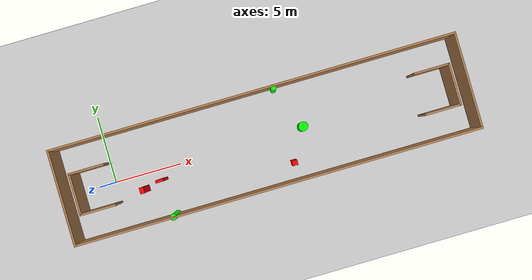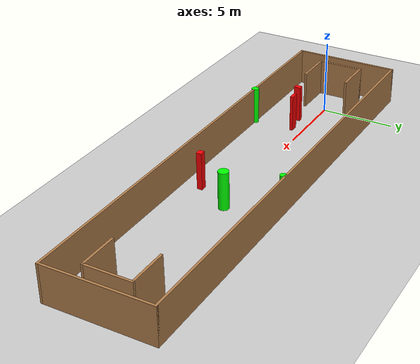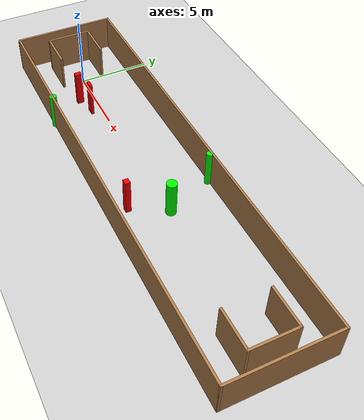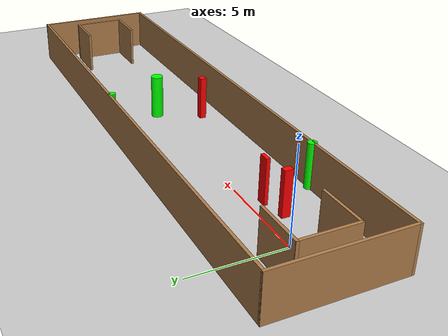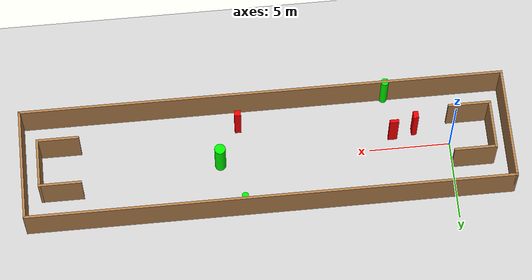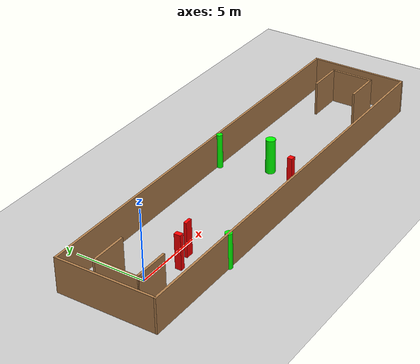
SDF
<sdf version="1.7">
 <world name="default">
  <light name="sun" type="directional">
   <pose>0 0 10 0 -0 0</pose>
   <diffuse>0.8 0.8 0.8 1</diffuse>
   <specular>0.2 0.2 0.2 1</specular>
   <attenuation>
    <range>1000</range>
    <constant>0.9</constant>
    <linear>0.01</linear>
    <quadratic>0.001</quadratic>
   </attenuation>
   <direction>-0.5 0.1 -0.9</direction>
   <spot><inner_angle>0</inner_angle><outer_angle>0</outer_angle><falloff>0</falloff></spot>
  </light>
  <model name="ground_plane">
   <static>1</static>
   <link name="link">
    <collision name="collision">
     <geometry><plane><normal>0 0 1</normal><size>100 100</size></plane></geometry>
     <surface>
      <contact><collide_bitmask>65535</collide_bitmask></contact>
      <friction><ode><mu>100</mu><mu2>50</mu2></ode></friction>
     </surface>
    </collision>
    <visual name="visual">
     <cast_shadows>0</cast_shadows>
     <geometry><plane><normal>0 0 1</normal><size>100 100</size></plane></geometry>
     <material>
      <script><uri>file://media/materials/scripts/gazebo.material</uri><name>Gazebo/Grey</name></script>
     </material>
    </visual>
   </link>
  </model>
  <gravity>0 0 -9.8</gravity>
  <magnetic_field>6e-06 2.3e-05 -4.2e-05</magnetic_field>
  <atmosphere type="adiabatic"/>
  <physics type="ode">
   <max_step_size>0.001</max_step_size>
   <real_time_factor>1</real_time_factor>
   <real_time_update_rate>1000</real_time_update_rate>
  </physics>
  <scene><ambient>0.4 0.4 0.4 1</ambient><background>0.7 0.7 0.7 1</background><shadows>1</shadows></scene>
  <spherical_coordinates>
   <surface_model>EARTH_WGS84</surface_model>
   <latitude_deg>0</latitude_deg>
   <longitude_deg>0</longitude_deg>
   <elevation>0</elevation>
   <heading_deg>0</heading_deg>
  </spherical_coordinates>
  <model name="my_base_walls">
   <link name="Wall_0">
    <collision name="Wall_0_Collision">
     <geometry><box><size>7.15 0.15 2.5</size></box></geometry>
     <pose>0 0 1.25 0 -0 0</pose>
    </collision>
    <visual name="Wall_0_Visual">
     <pose>0 0 1.25 0 -0 0</pose>
     <geometry><box><size>7.15 0.15 2.5</size></box></geometry>
     <material>
      <script><uri>file://media/materials/scripts/gazebo.material</uri><name>Gazebo/Wood</name></script>
      <ambient>1 1 1 1</ambient>
     </material>
     <meta><layer>0</layer></meta>
    </visual>
    <pose>-15 0 0 0 -0 1.5708</pose>
   </link>
   <link name="Wall_10">
    <collision name="Wall_10_Collision">
     <geometry><box><size>2.65 0.15 2.5</size></box></geometry>
     <pose>0 0 1.25 0 -0 0</pose>
    </collision>
    <visual name="Wall_10_Visual">
     <pose>0 0 1.25 0 -0 0</pose>
     <geometry><box><size>2.65 0.15 2.5</size></box></geometry>
     <material>
      <script><uri>file://media/materials/scripts/gazebo.material</uri><name>Gazebo/Wood</name></script>
      <ambient>1 1 1 1</ambient>
     </material>
     <meta><layer>0</layer></meta>
    </visual>
    <pose>-12.75 -1.5 0 0 -0 0</pose>
   </link>
   <link name="Wall_12">
    <collision name="Wall_12_Collision">
     <geometry><box><size>2.65 0.15 2.5</size></box></geometry>
     <pose>0 0 1.25 0 -0 0</pose>
    </collision>
    <visual name="Wall_12_Visual">
     <pose>0 0 1.25 0 -0 0</pose>
     <geometry><box><size>2.65 0.15 2.5</size></box></geometry>
     <material>
      <script><uri>file://media/materials/scripts/gazebo.material</uri><name>Gazebo/Wood</name></script>
      <ambient>1 1 1 1</ambient>
     </material>
     <meta><layer>0</layer></meta>
    </visual>
    <pose>-12.75 1.5 0 0 -0 0</pose>
   </link>
   <link name="Wall_14">
    <collision name="Wall_14_Collision">
     <geometry><box><size>3.15 0.15 2.5</size></box></geometry>
     <pose>0 0 1.25 0 -0 0</pose>
    </collision>
    <visual name="Wall_14_Visual">
     <pose>0 0 1.25 0 -0 0</pose>
     <geometry><box><size>3.15 0.15 2.5</size></box></geometry>
     <material>
      <script><uri>file://media/materials/scripts/gazebo.material</uri><name>Gazebo/Wood</name></script>
      <ambient>1 1 1 1</ambient>
     </material>
     <meta><layer>0</layer></meta>
    </visual>
    <pose>14 0 0 0 -0 -1.5708</pose>
   </link>
   <link name="Wall_15">
    <collision name="Wall_15_Collision">
     <geometry><box><size>2.65 0.15 2.5</size></box></geometry>
     <pose>0 0 1.25 0 -0 0</pose>
    </collision>
    <visual name="Wall_15_Visual">
     <pose>0 0 1.25 0 -0 0</pose>
     <geometry><box><size>2.65 0.15 2.5</size></box></geometry>
     <material>
      <script><uri>file://media/materials/scripts/gazebo.material</uri><name>Gazebo/Wood</name></script>
      <ambient>1 1 1 1</ambient>
     </material>
     <meta><layer>0</layer></meta>
    </visual>
    <pose>12.75 -1.5 0 0 -0 3.14159</pose>
   </link>
   <link name="Wall_17">
    <collision name="Wall_17_Collision">
     <geometry><box><size>2.65 0.15 2.5</size></box></geometry>
     <pose>0 0 1.25 0 -0 0</pose>
    </collision>
    <visual name="Wall_17_Visual">
     <pose>0 0 1.25 0 -0 0</pose>
     <geometry><box><size>2.65 0.15 2.5</size></box></geometry>
     <material>
      <script><uri>file://media/materials/scripts/gazebo.material</uri><name>Gazebo/Wood</name></script>
      <ambient>1 1 1 1</ambient>
     </material>
     <meta><layer>0</layer></meta>
    </visual>
    <pose>12.75 1.5 0 0 -0 3.14159</pose>
   </link>
   <link name="Wall_2">
    <collision name="Wall_2_Collision">
     <geometry><box><size>30.15 0.15 2.5</size></box></geometry>
     <pose>0 0 1.25 0 -0 0</pose>
    </collision>
    <visual name="Wall_2_Visual">
     <pose>0 0 1.25 0 -0 0</pose>
     <geometry><box><size>30.15 0.15 2.5</size></box></geometry>
     <material>
      <script><uri>file://media/materials/scripts/gazebo.material</uri><name>Gazebo/Wood</name></script>
      <ambient>1 1 1 1</ambient>
     </material>
     <meta><layer>0</layer></meta>
    </visual>
    <pose>-0 -3.5 0 0 -0 0</pose>
   </link>
   <link name="Wall_4">
    <collision name="Wall_4_Collision">
     <geometry><box><size>30.15 0.15 2.5</size></box></geometry>
     <pose>0 0 1.25 0 -0 0</pose>
    </collision>
    <visual name="Wall_4_Visual">
     <pose>0 0 1.25 0 -0 0</pose>
     <geometry><box><size>30.15 0.15 2.5</size></box></geometry>
     <material>
      <script><uri>file://media/materials/scripts/gazebo.material</uri><name>Gazebo/Wood</name></script>
      <ambient>1 1 1 1</ambient>
     </material>
     <meta><layer>0</layer></meta>
    </visual>
    <pose>-0 3.5 0 0 -0 0</pose>
   </link>
   <link name="Wall_6">
    <collision name="Wall_6_Collision">
     <geometry><box><size>7.15 0.15 2.5</size></box></geometry>
     <pose>0 0 1.25 0 -0 0</pose>
    </collision>
    <visual name="Wall_6_Visual">
     <pose>0 0 1.25 0 -0 0</pose>
     <geometry><box><size>7.15 0.15 2.5</size></box></geometry>
     <material>
      <script><uri>file://media/materials/scripts/gazebo.material</uri><name>Gazebo/Wood</name></script>
      <ambient>1 1 1 1</ambient>
     </material>
     <meta><layer>0</layer></meta>
    </visual>
    <pose>15 0 0 0 -0 -1.5708</pose>
   </link>
   <link name="Wall_9">
    <collision name="Wall_9_Collision">
     <geometry><box><size>3.15 0.15 2.5</size></box></geometry>
     <pose>0 0 1.25 0 -0 0</pose>
    </collision>
    <visual name="Wall_9_Visual">
     <pose>0 0 1.25 0 -0 0</pose>
     <geometry><box><size>3.15 0.15 2.5</size></box></geometry>
     <material>
      <script><uri>file://media/materials/scripts/gazebo.material</uri><name>Gazebo/Wood</name></script>
      <ambient>1 1 1 1</ambient>
     </material>
     <meta><layer>0</layer></meta>
    </visual>
    <pose>-14 0 0 0 -0 -1.5708</pose>
   </link>
   <static>1</static>
   <pose>11.5 0 0 0 -0 0</pose>
  </model>
  <model name="cylinder1">
   <static>1</static>
   <link name="link">
    <inertial>
     <mass>1</mass>
     <inertia><ixx>0.5</ixx><ixy>0</ixy><ixz>0</ixz><iyy>0.5</iyy><iyz>0</iyz><izz>1</izz></inertia>
    </inertial>
    <collision name="collision">
     <geometry><cylinder><radius>0.21195472721925043</radius><length>2.5</length></cylinder></geometry>
    </collision>
    <visual name="visual">
     <geometry><cylinder><radius>0.21195472721925043</radius><length>2.5</length></cylinder></geometry>
     <material>
      <ambient>0 1 0 1</ambient>
      <diffuse>0 1 0 1</diffuse>
      <specular>0.1 0.1 0.1 1</specular>
      <emissive>0 0 0 0</emissive>
     </material>
    </visual>
   </link>
   <pose>13.09943387028335 3.340068867227618 1.25 0 0 0</pose>
  </model>
  <model name="cylinder2">
   <static>1</static>
   <link name="link">
    <inertial>
     <mass>1</mass>
     <inertia><ixx>0.5</ixx><ixy>0</ixy><ixz>0</ixz><iyy>0.5</iyy><iyz>0</iyz><izz>1</izz></inertia>
    </inertial>
    <collision name="collision">
     <geometry><cylinder><radius>0.34152730996453035</radius><length>2.5</length></cylinder></geometry>
    </collision>
    <visual name="visual">
     <geometry><cylinder><radius>0.34152730996453035</radius><length>2.5</length></cylinder></geometry>
     <material>
      <ambient>0 1 0 1</ambient>
      <diffuse>0 1 0 1</diffuse>
      <specular>0.1 0.1 0.1 1</specular>
      <emissive>0 0 0 0</emissive>
     </material>
    </visual>
   </link>
   <pose>14.372115674140527 0.12078956797249862 1.25 0 0 0</pose>
  </model>
  <model name="cylinder3">
   <static>1</static>
   <link name="link">
    <inertial>
     <mass>1</mass>
     <inertia><ixx>0.5</ixx><ixy>0</ixy><ixz>0</ixz><iyy>0.5</iyy><iyz>0</iyz><izz>1</izz></inertia>
    </inertial>
    <collision name="collision">
     <geometry><cylinder><radius>0.2399328262105006</radius><length>2.5</length></cylinder></geometry>
    </collision>
    <visual name="visual">
     <geometry><cylinder><radius>0.2399328262105006</radius><length>2.5</length></cylinder></geometry>
     <material>
      <ambient>0 1 0 1</ambient>
      <diffuse>0 1 0 1</diffuse>
      <specular>0.1 0.1 0.1 1</specular>
      <emissive>0 0 0 0</emissive>
     </material>
    </visual>
   </link>
   <pose>3.783518417176447 -3.4726695645910644 1.25 0 0 0</pose>
  </model>
  <model name="box1">
   <static>1</static>
   <link name="link">
    <inertial>
     <mass>1</mass>
     <inertia><ixx>0.083</ixx><ixy>0</ixy><ixz>0</ixz><iyy>0.083</iyy><iyz>0</iyz><izz>0.083</izz></inertia>
    </inertial>
    <collision name="collision">
     <geometry><box><size>0.5612702317193128 0.20198832344032738 2.5</size></box></geometry>
    </collision>
    <visual name="visual">
     <geometry><box><size>0.5612702317193128 0.20198832344032738 2.5</size></box></geometry>
     <material>
      <ambient>1 0 0 1</ambient>
      <diffuse>1 0 0 1</diffuse>
      <specular>0.1 0.1 0.1 1</specular>
      <emissive>0 0 0 0</emissive>
     </material>
    </visual>
    <sensor name="my_contact" type="contact">
     <contact><collision>box_collision</collision><topic>__default_topic__</topic></contact>
    </sensor>
   </link>
   <pose>3.511503693684814 -0.7395647885797159 1.25 0 0 0</pose>
  </model>
  <model name="box2">
   <static>1</static>
   <link name="link">
    <inertial>
     <mass>1</mass>
     <inertia><ixx>0.083</ixx><ixy>0</ixy><ixz>0</ixz><iyy>0.083</iyy><iyz>0</iyz><izz>0.083</izz></inertia>
    </inertial>
    <collision name="collision">
     <geometry><box><size>0.40009382424266804 0.3539317844581736 2.5</size></box></geometry>
    </collision>
    <visual name="visual">
     <geometry><box><size>0.40009382424266804 0.3539317844581736 2.5</size></box></geometry>
     <material>
      <ambient>1 0 0 1</ambient>
      <diffuse>1 0 0 1</diffuse>
      <specular>0.1 0.1 0.1 1</specular>
      <emissive>0 0 0 0</emissive>
     </material>
    </visual>
    <sensor name="my_contact" type="contact">
     <contact><collision>box_collision</collision><topic>__default_topic__</topic></contact>
    </sensor>
   </link>
   <pose>13.088141606644145 -2.1955105146804774 1.25 0 0 0</pose>
  </model>
  <model name="box3">
   <static>1</static>
   <link name="link">
    <inertial>
     <mass>1</mass>
     <inertia><ixx>0.083</ixx><ixy>0</ixy><ixz>0</ixz><iyy>0.083</iyy><iyz>0</iyz><izz>0.083</izz></inertia>
    </inertial>
    <collision name="collision">
     <geometry><box><size>0.31944201774599296 0.45717794247112037 2.5</size></box></geometry>
    </collision>
    <visual name="visual">
     <geometry><box><size>0.31944201774599296 0.45717794247112037 2.5</size></box></geometry>
     <material>
      <ambient>1 0 0 1</ambient>
      <diffuse>1 0 0 1</diffuse>
      <specular>0.1 0.1 0.1 1</specular>
      <emissive>0 0 0 0</emissive>
     </material>
    </visual>
    <sensor name="my_contact" type="contact">
     <contact><collision>box_collision</collision><topic>__default_topic__</topic></contact>
    </sensor>
   </link>
   <pose>2.139860864555658 -1.0559954630863952 1.25 0 0 0</pose>
  </model>
 </world>
</sdf>
